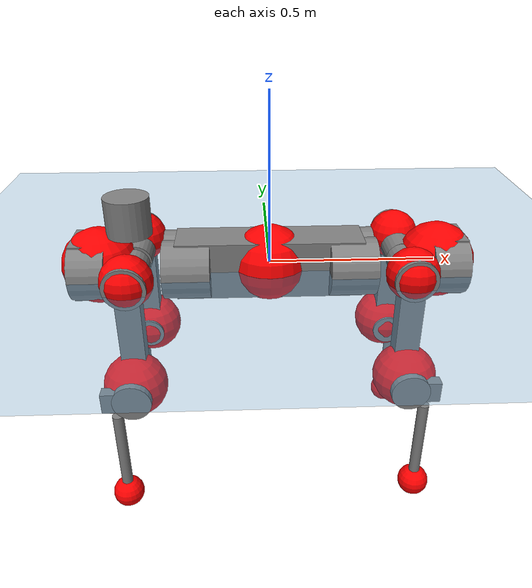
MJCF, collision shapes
<mujoco model="anymal_c">
  <compiler angle="radian" assetdir="assets" balanceinertia="true" inertiafromgeom="false"/>

  <option timestep="0.005" density="1.2" viscosity="2e-05"/>

  <size nkey="1"/>

  <visual>
    <quality shadowsize="8192"/>
    <map shadowclip="0.5"/>
  </visual>

  <default>
    <default class="/">
      <material specular="0" shininess="0.25"/>
      <geom contype="0" conaffinity="0" group="1" solref="-1000 -80"/>
      <site size="0.01 0.005 0.005" group="5"/>
      <general forcelimited="true" forcerange="-80 80" biastype="affine" gainprm="80" biasprm="0 -80 -2"/>
      <default class="anymal_c">
        <joint armature="0.01" damping="0.01" frictionloss="0.1"/>
        <default class="visual">
          <geom type="mesh" group="2"/>
          <default class="visual_zflip"/>
        </default>
        <default class="collision">
          <geom type="cylinder" group="3"/>
          <default class="foot">
            <geom size="0.03 0 0" type="sphere" condim="6" priority="1" friction="0.8 0.02 0.01" solimp="0.015 1 0.03"/>
          </default>
        </default>
      </default>
      <default class="reward_collision_sphere">
        <geom group="5" rgba="1 0 0 1"/>
      </default>
    </default>
  </default>

  <asset>
    <texture type="skybox" colorspace="auto" name="//unnamed_texture_0" builtin="gradient" rgb1="0.95 0.95 0.95" rgb2="0.95 0.95 0.95" width="100" height="600"/>
    <texture type="2d" colorspace="auto" name="texplane" builtin="checker" rgb1="0.345 0.575 0.748" rgb2="0.345 0.575 0.748" markrgb="1 1 1" width="512" height="512"/>
    <texture type="2d" colorspace="linear" name="base" file="base.png"/>
    <texture type="2d" colorspace="linear" name="top_shell" file="top_shell.png"/>
    <texture type="2d" colorspace="linear" name="bottom_shell" file="bottom_shell.png"/>
    <texture type="2d" colorspace="linear" name="remote" file="remote.png"/>
    <texture type="2d" colorspace="linear" name="hatch" file="hatch.png"/>
    <texture type="2d" colorspace="linear" name="handle" file="handle.png"/>
    <texture type="2d" colorspace="linear" name="face" file="face.png"/>
    <texture type="2d" colorspace="linear" name="battery" file="battery.png"/>
    <texture type="2d" colorspace="linear" name="lidar_cage" file="lidar_cage.png"/>
    <texture type="2d" colorspace="linear" name="depth_camera" file="depth_camera.png"/>
    <texture type="2d" colorspace="linear" name="wide_angle_camera" file="wide_angle_camera.png"/>
    <texture type="2d" colorspace="linear" name="lidar" file="lidar.png"/>
    <texture type="2d" colorspace="linear" name="drive" file="drive.png"/>
    <texture type="2d" colorspace="linear" name="hip_l" file="hip_l.png"/>
    <texture type="2d" colorspace="linear" name="shank_l" file="shank_l.png"/>
    <texture type="2d" colorspace="linear" name="foot" file="foot.png"/>
    <texture type="2d" colorspace="linear" name="thigh" file="thigh.png"/>
    <texture type="2d" colorspace="linear" name="shank_r" file="shank_r.png"/>
    <texture type="2d" colorspace="linear" name="hip_r" file="hip_r.png"/>
    <material name="MatPlane" class="/" texture="texplane" texuniform="true" texrepeat="2 2" specular="0.9" shininess="0.5"/>
    <material name="black_plastic" class="/" rgba="0.007 0.007 0.007 1"/>
    <material name="green" class="/" rgba="0.052 0.178 0.033 1"/>
    <material name="red" class="/" rgba="0.178 0.006 0.005 1"/>
    <material name="yellow" class="/" rgba="0.178 0.119 0.006 1"/>
    <material name="lwl" class="/" rgba="0.8 0.8 0.8 1"/>
    <material name="base" class="/" texture="base"/>
    <material name="top_shell" class="/" texture="top_shell"/>
    <material name="bottom_shell" class="/" texture="bottom_shell"/>
    <material name="hip_l" class="/" texture="hip_l"/>
    <material name="thigh" class="/" texture="thigh"/>
    <material name="shank_l" class="/" texture="shank_l"/>
    <material name="foot" class="/" texture="foot"/>
    <material name="hip_r" class="/" texture="hip_r"/>
    <material name="shank" class="/" texture="shank_r"/>
    <material name="hatch" class="/" texture="hatch"/>
    <material name="remote" class="/" texture="remote"/>
    <material name="handle" class="/" texture="handle"/>
    <material name="face" class="/" texture="face"/>
    <material name="depth_camera" class="/" texture="depth_camera"/>
    <material name="wide_angle_camera" class="/" texture="wide_angle_camera"/>
    <material name="battery" class="/" texture="battery"/>
    <material name="lidar_cage" class="/" texture="lidar_cage"/>
    <material name="lidar" class="/" texture="lidar"/>
    <material name="drive" class="/" texture="drive"/>
    <mesh name="base_0" class="/" file="base_0.obj"/>
    <mesh name="base_1" class="/" file="base_1.obj"/>
    <mesh name="base_2" class="/" file="base_2.obj"/>
    <mesh name="base_3" class="/" file="base_3.obj"/>
    <mesh name="base_4" class="/" file="base_4.obj"/>
    <mesh name="base_5" class="/" file="base_5.obj"/>
    <mesh name="top_shell" class="/" file="top_shell.obj"/>
    <mesh name="bottom_shell" class="/" file="bottom_shell.obj"/>
    <mesh name="remote" class="/" file="remote.obj"/>
    <mesh name="handle" class="/" file="handle.obj"/>
    <mesh name="face" class="/" file="face.obj"/>
    <mesh name="wide_angle_camera" class="/" file="wide_angle_camera.obj"/>
    <mesh name="depth_camera" class="/" file="depth_camera.obj"/>
    <mesh name="battery" class="/" file="battery.obj"/>
    <mesh name="lidar_cage" class="/" file="lidar_cage.obj"/>
    <mesh name="lidar" class="/" file="lidar.obj"/>
    <mesh name="drive" class="/" file="drive.obj"/>
    <mesh name="hip_l" class="/" file="hip_l.obj"/>
    <mesh name="thigh" class="/" file="thigh.obj"/>
    <mesh name="shank_l" class="/" file="shank_l.obj"/>
    <mesh name="foot" class="/" file="foot.obj"/>
    <mesh name="hip_r" class="/" file="hip_r.obj"/>
    <mesh name="hatch" class="/" file="hatch.obj"/>
    <mesh name="shank_r" class="/" file="shank_r.obj"/>
  </asset>

  <worldbody>
    <geom name="floor" class="/" size="100 100 0.125" type="plane" group="0" material="MatPlane"/>
    <light name="toplight_shadow" class="/" pos="0 0 5" dir="0.0990148 0.0990148 -0.990148" type="directional" ambient="0.04 0.04 0.04" diffuse="0.55 0.55 0.55" specular="0.12 0.12 0.12"/>
    <light name="toplight_fill" class="/" pos="0 0 5" dir="0.0990148 0.0990148 -0.990148" type="directional" castshadow="false" ambient="0.04 0.04 0.04" diffuse="0.3 0.3 0.3" specular="0.08 0.08 0.08"/>
    <body name="trunk" childclass="anymal_c" pos="0.000509652 -0.000208492 -0.00111913" quat="1 -3.08016e-05 -0.000117804 0.000442117">
      <inertial pos="0.00235755 0.000788128 0.0597244" quat="0.493776 0.497216 0.498677 0.510179" mass="16.9257" diaginertia="1.14929 0.0386132 0.44329"/>
      <joint name="//unnamed_joint_0" type="free" armature="0" damping="0" frictionloss="0"/>
      <geom name="//unnamed_geom_1" class="visual" material="green" mesh="base_0"/>
      <geom name="//unnamed_geom_2" class="visual" material="yellow" mesh="base_1"/>
      <geom name="//unnamed_geom_3" class="visual" material="red" mesh="base_2"/>
      <geom name="//unnamed_geom_4" class="visual" material="black_plastic" mesh="base_3"/>
      <geom name="//unnamed_geom_5" class="visual" material="lwl" mesh="base_4"/>
      <geom name="//unnamed_geom_6" class="visual" material="base" mesh="base_5"/>
      <geom name="trunk_1" class="collision" size="0.276192 0.0666669 0.0857146" type="box"/>
      <geom name="trunk_2" class="collision" size="0.0857146 0.0690479" pos="0.243637 0.0402481 0" quat="0.707107 0 0.707107 0"/>
      <geom name="trunk_3" class="collision" size="0.0857146 0.0690479" pos="-0.243637 0.0402481 0" quat="0.707107 0 0.707107 0"/>
      <geom name="trunk_4" class="collision" size="0.0857146 0.0690479" pos="0.243637 -0.0402481 0" quat="0.707107 0 0.707107 0"/>
      <geom name="trunk_5" class="collision" size="0.0857146 0.0690479" pos="-0.243637 -0.0402481 0" quat="0.707107 0 0.707107 0"/>
      <geom name="//unnamed_geom_12" class="visual" material="top_shell" mesh="top_shell"/>
      <geom name="//unnamed_geom_13" class="visual" material="bottom_shell" mesh="bottom_shell"/>
      <geom name="//unnamed_geom_14" class="visual" material="remote" mesh="remote"/>
      <geom name="//unnamed_geom_15" class="visual" material="handle" mesh="handle"/>
      <geom name="//unnamed_geom_16" class="visual" pos="0.46431 0 0" quat="1 0 0 0" material="face" mesh="face"/>
      <geom name="trunk_6" class="collision" size="0.0523812 0.0666669 0.0857146" pos="0.525919 0 0" type="box"/>
      <geom name="//unnamed_geom_18" class="collision" size="0.0857146 0.0523812" pos="0.525919 0.0402481 0" quat="0.707107 0 0.707107 0"/>
      <geom name="//unnamed_geom_19" class="collision" size="0.0857146 0.0523812" pos="0.525919 -0.0402481 0" quat="0.707107 0 0.707107 0"/>
      <geom name="//unnamed_geom_20" class="visual" pos="0.517128 0 -0.0342488" quat="0.965926 0 0.258819 0" material="depth_camera" mesh="depth_camera"/>
      <geom name="//unnamed_geom_21" class="visual" pos="0.574647 0 0.0173953" material="wide_angle_camera" mesh="wide_angle_camera"/>
      <geom name="//unnamed_geom_22" class="visual_zflip" pos="-0.46431 0 0" quat="0 0 0 1" material="face" mesh="face"/>
      <geom name="trunk_7" class="collision" size="0.0523812 0.0666669 0.0857146" pos="-0.525919 0 0" quat="0 0 0 1" type="box"/>
      <geom name="//unnamed_geom_24" class="collision" size="0.0857146 0.0523812" pos="-0.525919 -0.0402481 0" quat="0 -0.707107 0 0.707107"/>
      <geom name="//unnamed_geom_25" class="collision" size="0.0857146 0.0523812" pos="-0.525919 0.0402481 0" quat="0 -0.707107 0 0.707107"/>
      <geom name="//unnamed_geom_26" class="visual" pos="-0.517128 0 -0.0342488" quat="0 -0.258819 0 0.965926" material="depth_camera" mesh="depth_camera"/>
      <geom name="//unnamed_geom_27" class="visual_zflip" pos="-0.574647 0 0.0173953" quat="0 0 0 1" material="wide_angle_camera" mesh="wide_angle_camera"/>
      <geom name="//unnamed_geom_28" class="visual" material="battery" mesh="battery"/>
      <geom name="//unnamed_geom_29" class="visual" pos="0 0.0368101 0.0334385" quat="0.683013 -0.183013 0.183013 0.683013" material="depth_camera" mesh="depth_camera"/>
      <geom name="//unnamed_geom_30" class="visual" pos="0 -0.0368101 0.0334385" quat="0.683013 0.183013 0.183013 -0.683013" material="depth_camera" mesh="depth_camera"/>
      <geom name="//unnamed_geom_31" class="visual" pos="-0.407741 0 0.085408" quat="1 0 0 0" material="lidar_cage" mesh="lidar_cage"/>
      <geom name="trunk_8" class="collision" size="0.0666669 0.0571431" pos="-0.407741 0 0.155129"/>
      <geom name="//unnamed_geom_33" class="visual" pos="-0.407741 -0.000214193 0.165238" quat="0.707107 0 0 -0.707107" material="lidar" mesh="lidar"/>
      <geom name="//unnamed_geom_34" class="visual" pos="0.335939 0.0600057 -1.01265e-08" quat="0.258819 0.965926 0 0" material="drive" mesh="drive"/>
      <geom name="//unnamed_geom_35" class="visual" pos="0.335939 -0.0600057 1.01265e-08" quat="0.258819 -0.965926 0 0" material="drive" mesh="drive"/>
      <geom name="//unnamed_geom_36" class="visual" pos="-0.335939 0.0600057 1.01265e-08" quat="0 0 0.965926 -0.258819" material="drive" mesh="drive"/>
      <geom name="//unnamed_geom_37" class="visual" pos="-0.335939 -0.0600057 -1.01265e-08" quat="0 0 -0.965926 -0.258819" material="drive" mesh="drive"/>
      <geom name="//unnamed_geom_38" class="visual" pos="0.12994 0 0.084827" quat="1 0 0 0" material="hatch" mesh="hatch"/>
      <geom name="//unnamed_geom_39" class="reward_collision_sphere" size="0.114286"/>
      <geom name="//unnamed_geom_40" class="reward_collision_sphere" size="0.114286" pos="0.504076 0 0"/>
      <geom name="//unnamed_geom_41" class="reward_collision_sphere" size="0.114286" pos="-0.504076 0 0"/>
      <site name="imu" pos="0.291479 -0.00202547 0.0499067" size="0.00952385"/>
      <camera name="track" pos="0 -1.14995 0" quat="0.707107 0.707107 0 0" mode="trackcom"/>
      <camera name="ego_camera" pos="0.504076 0 -0.0464805" quat="-0.5 -0.5 0.5 0.5"/>
      <body name="LF_HIP" pos="0.338135 0.0579852 0.00019224" quat="0.258186 0.966095 -0.000537903 0.000837854">
        <inertial pos="0.0625244 -0.0109109 -0.00954738" quat="-0.134825 0.707871 -0.141034 0.678859" mass="2.45378" diaginertia="0.0105927 0.000314555 0.00725029"/>
        <joint name="LF_HAA" pos="0 0 0" axis="0.99999 -0.00350235 0.00270025" range="-0.721758 0.529508" armature="0.0086415" damping="0.0191923" frictionloss="0.0859347"/>
        <geom name="//unnamed_geom_42" class="visual" pos="0 -0.000595697 9.78427e-05" quat="0.258819 -0.965926 0 0" material="hip_l" mesh="hip_l"/>
        <geom name="//unnamed_geom_43" class="visual" pos="0.0670981 -0.0743339 -0.0472588" quat="0.183013 -0.683013 0.683013 0.183013" material="drive" mesh="drive"/>
        <geom name="//unnamed_geom_44" class="collision" size="0.0476192 0.0666669" pos="0.0670981 -0.00687656 -0.0080237" quat="-0.353553 -0.612372 0.612372 -0.353553"/>
        <body name="LF_THIGH" pos="0.0673061 -0.043694 -0.0490143" quat="0.18296 -0.683061 0.682975 0.183026">
          <inertial pos="0.0373964 -0.000187374 -0.28667" quat="0.993484 -0.0130308 -0.0848371 0.074986" mass="2.70724" diaginertia="0.054119 0.00188169 0.00865218"/>
          <joint name="LF_HFE" pos="0 0 0" axis="0.999935 0.00556567 0.00991586" stiffness="0.0124595" range="-3.19768 3.17915" armature="0.0102633" damping="0" frictionloss="0.09894"/>
          <geom name="//unnamed_geom_45" class="visual" pos="0.0108473 1.70927e-05 0" quat="0.707107 0 0 -0.707107" material="thigh" mesh="thigh"/>
          <geom name="//unnamed_geom_46" class="collision" size="0.061905 0.0380954" pos="0.0448067 0 0" quat="0.5 0.5 -0.5 -0.5"/>
          <geom name="//unnamed_geom_47" class="collision" size="0.0357144 0.0285715 0.134585" pos="0.0336051 0 -0.164209" quat="0.707107 0 0 -0.707107" type="box"/>
          <geom name="//unnamed_geom_48" class="visual" pos="0.112353 0 -0.331174" quat="1 0 0 0" material="drive" mesh="drive"/>
          <geom name="//unnamed_geom_49" class="collision" size="0.0476192 0.0666669" pos="0.0339411 0 -0.331174" quat="0.707107 0 0.707107 0"/>
          <geom name="//unnamed_geom_50" class="reward_collision_sphere" size="0.0761908" pos="0.0280042 0 0"/>
          <body name="LF_SHANK" pos="0.112573 -2.729e-06 -0.328768" quat="1 8.1845e-06 6.94702e-06 -5.6336e-05">
            <inertial pos="0.00390499 -0.0349842 -0.096093" quat="0.993992 -0.106077 0.00646745 -0.0261945" mass="0.497928" diaginertia="0.0173942 0.000582142 0.00224397"/>
            <joint name="LF_KFE" pos="0 0 0" axis="0.99992 0.00201422 0.012484" range="-3.16743 3.19058" armature="0.0106172" damping="0.00863415" frictionloss="0.102819"/>
            <geom name="//unnamed_geom_51" class="visual" pos="0.00353705 0.0188597 0" quat="0.707107 0 0 -0.707107" material="shank_l" mesh="shank_l"/>
            <geom name="LF_kfe_act" class="collision" size="0.0571431 0.0190477" pos="0.0224034 0 0" quat="0.5 0.5 -0.5 -0.5"/>
            <geom name="//unnamed_geom_53" class="collision" size="0.0547612 0.032143 0.0180953" pos="0.0224034 -0.0330604 0" quat="0.5 0.5 -0.5 -0.5" type="box"/>
            <geom name="//unnamed_geom_54" class="visual" pos="0.0146173 -0.0444911 -0.392726" quat="0.382683 0 0 -0.92388" material="foot" mesh="foot"/>
            <geom name="LF_calf" class="collision" size="0.0166667 0.134526" pos="0.0146182 -0.0505689 -0.196363" quat="0.707107 0 0 -0.707107"/>
            <geom name="LF_foot" class="foot" size="0.0245302" pos="0.0146182 -0.0505689 -0.36658" quat="0.707107 0 0 -0.707107"/>
            <geom name="//unnamed_geom_57" class="reward_collision_sphere" size="0.0952385" pos="-0.0560084 0 0"/>
            <geom name="//unnamed_geom_58" class="reward_collision_sphere" size="0.0476192" pos="0.0146182 -0.0505689 -0.36658"/>
            <site name="LF_foot" class="foot" pos="0.0146182 -0.0505689 -0.36658" quat="0.707107 0 0 -0.707107" size="0.00952385"/>
          </body>
        </body>
      </body>
      <body name="RF_HIP" pos="0.334795 -0.0587082 4.92684e-05" quat="0.258233 -0.966083 0.000196427 0.0002932">
        <inertial pos="0.0629293 0.00866539 -0.00947466" quat="0.138034 0.676552 0.130245 0.711519" mass="2.37594" diaginertia="0.0102121 0.000323423 0.00715646"/>
        <joint name="RF_HAA" pos="0 0 0" axis="0.999888 -0.0132304 0.00705842" range="-0.46804 0.753461" armature="0.00988132" damping="0.0148507" frictionloss="0.0994213"/>
        <geom name="//unnamed_geom_59" class="visual" pos="0 0.000595692 9.78424e-05" quat="0.258819 0.965926 0 0" material="hip_r" mesh="hip_r"/>
        <geom name="//unnamed_geom_60" class="visual" pos="0.0670981 0.0743339 -0.0472588" quat="0.183013 0.683013 0.683013 -0.183013" material="drive" mesh="drive"/>
        <geom name="//unnamed_geom_61" class="collision" size="0.0476192 0.0666669" pos="0.0670981 0.00687656 -0.0080237" quat="-0.353553 0.612372 0.612372 0.353553"/>
        <body name="RF_THIGH" pos="0.064856 0.040069 -0.0511742" quat="0.182339 0.68298 0.682924 -0.184137">
          <inertial pos="0.0345336 0.00159823 -0.28604" quat="0.992486 -0.00443967 -0.0827841 0.0899895" mass="2.69098" diaginertia="0.053418 0.00190344 0.00908024"/>
          <joint name="RF_HFE" pos="0 0 0" axis="1 0.00054691 -0.000715437" stiffness="0.00742653" range="-3.19006 3.16802" armature="0.00932982" damping="0.00274209" frictionloss="0.0789138"/>
          <geom name="//unnamed_geom_62" class="visual" pos="0.0108473 1.70927e-05 0" quat="0.707107 0 0 -0.707107" material="thigh" mesh="thigh"/>
          <geom name="//unnamed_geom_63" class="collision" size="0.061905 0.0380954" pos="0.0448067 0 0" quat="0.5 0.5 0.5 0.5"/>
          <geom name="//unnamed_geom_64" class="collision" size="0.0357144 0.0285715 0.134585" pos="0.0336051 0 -0.164209" quat="0.707107 0 0 0.707107" type="box"/>
          <geom name="//unnamed_geom_65" class="visual" pos="0.112353 0 -0.331174" quat="1 0 0 0" material="drive" mesh="drive"/>
          <geom name="//unnamed_geom_66" class="collision" size="0.0476192 0.0666669" pos="0.0339411 0 -0.331174" quat="0.707107 0 0.707107 0"/>
          <geom name="//unnamed_geom_67" class="reward_collision_sphere" size="0.0761908" pos="0.0280042 0 0"/>
          <body name="RF_SHANK" pos="0.111157 0.0016402 -0.3281" quat="1 -3.56284e-06 -6.38366e-06 -1.8074e-06">
            <inertial pos="0.00720993 0.0355006 -0.0950894" quat="0.993197 0.113273 0.008189 0.0257385" mass="0.495697" diaginertia="0.0183427 0.000576305 0.00235274"/>
            <joint name="RF_KFE" pos="0 0 0" axis="0.999922 0.00798276 0.00960948" range="-3.17483 3.16907" armature="0.00825508" damping="0.0133488" frictionloss="0.104927"/>
            <geom name="//unnamed_geom_68" class="visual" pos="0.00353703 -0.0188597 0" quat="0.707107 0 0 0.707107" material="shank" mesh="shank_r"/>
            <geom name="RF_kfe_act" class="collision" size="0.0571431 0.0190477" pos="0.0224034 0 0" quat="0.5 0.5 0.5 0.5"/>
            <geom name="//unnamed_geom_70" class="collision" size="0.0547612 0.032143 0.0180953" pos="0.0224034 0.0330604 0" quat="0.5 0.5 0.5 0.5" type="box"/>
            <geom name="//unnamed_geom_71" class="visual" pos="0.0146191 0.0444911 -0.392726" quat="0.382683 0 0 0.92388" material="foot" mesh="foot"/>
            <geom name="RF_calf" class="collision" size="0.0166667 0.134526" pos="0.0146182 0.0505689 -0.196363" quat="0.707107 0 0 0.707107"/>
            <geom name="RF_foot" class="foot" size="0.0321244" pos="0.0146182 0.0505689 -0.36658" quat="0.707107 0 0 0.707107"/>
            <geom name="//unnamed_geom_74" class="reward_collision_sphere" size="0.0952385" pos="-0.0560084 0 0"/>
            <geom name="//unnamed_geom_75" class="reward_collision_sphere" size="0.0476192" pos="0.0146182 0.0505689 -0.36658"/>
            <site name="RF_foot" class="foot" pos="0.0146182 0.0505689 -0.36658" quat="0.707107 0 0 0.707107" size="0.00952385"/>
          </body>
        </body>
      </body>
      <body name="LH_HIP" pos="-0.333547 0.0626775 0.00114021" quat="-0.00136694 0.000259987 0.965853 -0.259087">
        <inertial pos="0.0660992 0.0075108 -0.00994102" quat="0.130519 0.675784 0.12356 0.714853" mass="2.4329" diaginertia="0.010032 0.000302273 0.00707067"/>
        <joint name="LH_HAA" pos="0 0 0" axis="0.999887 -0.00190275 -0.0149426" range="-0.441068 0.789777" armature="0.0100368" damping="0" frictionloss="0.097609"/>
        <geom name="//unnamed_geom_76" class="visual" pos="0 0.000595692 9.78424e-05" quat="-0.258819 -0.965926 0 0" material="hip_r" mesh="hip_r"/>
        <geom name="//unnamed_geom_77" class="visual" pos="0.0670981 0.0743339 -0.0472588" quat="0.183013 0.683013 0.683013 -0.183013" material="drive" mesh="drive"/>
        <geom name="//unnamed_geom_78" class="collision" size="0.0476192 0.0666669" pos="0.0670981 0.00687656 -0.0080237" quat="-0.353553 0.612372 0.612372 0.353553"/>
        <body name="LH_THIGH" pos="0.0653177 0.0449016 -0.0520737" quat="0.18293 0.682829 0.683191 -0.183116">
          <inertial pos="0.0345401 2.94278e-05 -0.286861" quat="0.992608 -0.00609834 -0.0816549 0.0895858" mass="2.63446" diaginertia="0.0528083 0.00182844 0.0091149"/>
          <joint name="LH_HFE" pos="0 0 0" axis="1 0.000111393 0.000821149" stiffness="0.00373889" range="-3.14902 3.12168" armature="0.00843599" damping="0" frictionloss="0.108078"/>
          <geom name="//unnamed_geom_79" class="visual" pos="0.0108473 1.70927e-05 0" quat="0.707107 0 0 -0.707107" material="thigh" mesh="thigh"/>
          <geom name="//unnamed_geom_80" class="collision" size="0.061905 0.0380954" pos="0.0448067 0 0" quat="0.5 0.5 -0.5 -0.5"/>
          <geom name="//unnamed_geom_81" class="collision" size="0.0357144 0.0285715 0.134585" pos="0.0336051 0 -0.164209" quat="0.707107 0 0 -0.707107" type="box"/>
          <geom name="//unnamed_geom_82" class="visual" pos="0.112353 0 -0.331174" quat="1 0 0 0" material="drive" mesh="drive"/>
          <geom name="//unnamed_geom_83" class="collision" size="0.0476192 0.0666669" pos="0.0339411 0 -0.331174" quat="0.707107 0 0.707107 0"/>
          <geom name="//unnamed_geom_84" class="reward_collision_sphere" size="0.0761908" pos="0.0280042 0 0"/>
          <body name="LH_SHANK" pos="0.110974 -0.00126317 -0.333917" quat="0.999999 -0.000153407 -0.00138462 -0.000286982">
            <inertial pos="0.00628541 0.0349872 -0.093164" quat="0.993785 0.106873 -0.0146891 0.0274495" mass="0.505705" diaginertia="0.0177895 0.000583921 0.00243039"/>
            <joint name="LH_KFE" pos="0 0 0" axis="0.999988 0.00437777 0.0023523" range="-3.12064 3.13468" armature="0.00932673" damping="0.0142495" frictionloss="0.10208"/>
            <geom name="//unnamed_geom_85" class="visual" pos="0.00353703 -0.0188597 0" quat="-0.707107 0 0 -0.707107" material="shank" mesh="shank_r"/>
            <geom name="LH_kfe_act" class="collision" size="0.0571431 0.0190477" pos="0.0224034 0 0" quat="0.5 0.5 -0.5 -0.5"/>
            <geom name="//unnamed_geom_87" class="collision" size="0.0547612 0.032143 0.0180953" pos="0.0224034 0.0330604 0" quat="0.5 0.5 -0.5 -0.5" type="box"/>
            <geom name="//unnamed_geom_88" class="visual" pos="0.0146191 0.0444911 -0.392726" quat="-0.382683 0 0 -0.92388" material="foot" mesh="foot"/>
            <geom name="LH_calf" class="collision" size="0.0166667 0.134526" pos="0.0146182 0.0505689 -0.196363" quat="0.707107 0 0 -0.707107"/>
            <geom name="LH_foot" class="foot" size="0.0240976" pos="0.0146182 0.0505689 -0.36658" quat="0.707107 0 0 -0.707107"/>
            <geom name="//unnamed_geom_91" class="reward_collision_sphere" size="0.0952385" pos="-0.0560084 0 0"/>
            <geom name="//unnamed_geom_92" class="reward_collision_sphere" size="0.0476192" pos="0.0146182 0.0505689 -0.36658"/>
            <site name="LH_foot" class="foot" pos="0.0146182 0.0505689 -0.36658" quat="0.707107 0 0 -0.707107" size="0.00952385"/>
          </body>
        </body>
      </body>
      <body name="RH_HIP" pos="-0.33652 -0.0589082 -0.00237894" quat="0.000131851 -5.24278e-05 -0.965915 -0.258858">
        <inertial pos="0.0648625 -0.0080266 -0.0102363" quat="-0.131631 0.701108 -0.133843 0.6879" mass="2.33072" diaginertia="0.0099426 0.00029983 0.00694522"/>
        <joint name="RH_HAA" pos="0 0 0" axis="1 -0.000109445 0.00069155" range="-0.716732 0.444414" armature="0.00981979" damping="0.00411503" frictionloss="0.0935686"/>
        <geom name="//unnamed_geom_93" class="visual" pos="0 -0.000595697 9.78427e-05" quat="-0.258819 0.965926 0 0" material="hip_l" mesh="hip_l"/>
        <geom name="//unnamed_geom_94" class="visual" pos="0.0670981 -0.0743339 -0.0472588" quat="-0.183013 0.683013 -0.683013 -0.183013" material="drive" mesh="drive"/>
        <geom name="//unnamed_geom_95" class="collision" size="0.0476192 0.0666669" pos="0.0670981 -0.00687656 -0.0080237" quat="0.353553 0.612372 -0.612372 0.353553"/>
        <body name="RH_THIGH" pos="0.0673788 -0.044504 -0.0503927" quat="-0.182753 0.682948 -0.683038 -0.183417">
          <inertial pos="0.0357145 -0.00254542 -0.28366" quat="0.993184 -0.00520054 -0.0806101 0.0840305" mass="2.82854" diaginertia="0.0556581 0.00193487 0.0094601"/>
          <joint name="RH_HFE" pos="0 0 0" axis="0.999998 0.00172887 0.000476631" range="-3.14099 3.13398" armature="0.008263" damping="0" frictionloss="0.0927803"/>
          <geom name="//unnamed_geom_96" class="visual" pos="0.0108473 1.70927e-05 0" quat="0.707107 0 0 -0.707107" material="thigh" mesh="thigh"/>
          <geom name="//unnamed_geom_97" class="collision" size="0.061905 0.0380954" pos="0.0448067 0 0" quat="0.5 0.5 0.5 0.5"/>
          <geom name="//unnamed_geom_98" class="collision" size="0.0357144 0.0285715 0.134585" pos="0.0336051 0 -0.164209" quat="0.707107 0 0 0.707107" type="box"/>
          <geom name="//unnamed_geom_99" class="visual" pos="0.112353 0 -0.331174" quat="1 0 0 0" material="drive" mesh="drive"/>
          <geom name="//unnamed_geom_100" class="collision" size="0.0476192 0.0666669" pos="0.0339411 0 -0.331174" quat="0.707107 0 0.707107 0"/>
          <geom name="//unnamed_geom_101" class="reward_collision_sphere" size="0.0761908" pos="0.0280042 0 0"/>
          <body name="RH_SHANK" pos="0.11364 -0.00218691 -0.328922" quat="0.999999 0.00113617 0.000205976 -8.74433e-05">
            <inertial pos="0.00365822 -0.0353926 -0.0938198" quat="0.992827 -0.11694 -0.00152373 -0.0248289" mass="0.516578" diaginertia="0.0175324 0.000581948 0.00236355"/>
            <joint name="RH_KFE" pos="0 0 0" axis="0.999971 -0.0059932 0.00463917" range="-3.15276 3.08242" armature="0.0104967" damping="0.0198126" frictionloss="0.0941724"/>
            <geom name="//unnamed_geom_102" class="visual" pos="0.00353705 0.0188597 0" quat="0.707107 0 0 -0.707107" material="shank_l" mesh="shank_l"/>
            <geom name="RH_kfe_act" class="collision" size="0.0571431 0.0190477" pos="0.0224034 0 0" quat="0.5 0.5 0.5 0.5"/>
            <geom name="//unnamed_geom_104" class="collision" size="0.0547612 0.032143 0.0180953" pos="0.0224034 -0.0330604 0" quat="0.5 0.5 0.5 0.5" type="box"/>
            <geom name="//unnamed_geom_105" class="visual" pos="0.0146173 -0.0444911 -0.392726" quat="0.382683 0 0 -0.92388" material="foot" mesh="foot"/>
            <geom name="RH_calf" class="collision" size="0.0166667 0.134526" pos="0.0146182 -0.0505689 -0.196363" quat="0.707107 0 0 0.707107"/>
            <geom name="RH_foot" class="foot" size="0.0267438" pos="0.0146182 -0.0505689 -0.36658" quat="0.707107 0 0 0.707107"/>
            <geom name="//unnamed_geom_108" class="reward_collision_sphere" size="0.0952385" pos="-0.0560084 0 0"/>
            <geom name="//unnamed_geom_109" class="reward_collision_sphere" size="0.0476192" pos="0.0146182 -0.0505689 -0.36658"/>
            <site name="RH_foot" class="foot" pos="0.0146182 -0.0505689 -0.36658" quat="0.707107 0 0 0.707107" size="0.00952385"/>
          </body>
        </body>
      </body>
    </body>
  </worldbody>

  <contact>
    <pair class="/" geom1="floor" geom2="LF_foot" name="//unnamed_contact_0"/>
    <pair class="/" geom1="floor" geom2="RF_foot" name="//unnamed_contact_1"/>
    <pair class="/" geom1="floor" geom2="LH_foot" name="//unnamed_contact_2"/>
    <pair class="/" geom1="floor" geom2="RH_foot" name="//unnamed_contact_3"/>
  </contact>

  <actuator>
    <general name="LF_HAA" class="/" joint="LF_HAA" forcerange="-73.0066 73.0066" gainprm="63.1195" biasprm="0 -63.1195 -1.80066"/>
    <general name="LF_HFE" class="/" joint="LF_HFE" forcerange="-70.4306 70.4306" gainprm="63.1195" biasprm="0 -63.1195 -1.80066"/>
    <general name="LF_KFE" class="/" joint="LF_KFE" forcerange="-71.7215 71.7215" gainprm="63.1195" biasprm="0 -63.1195 -1.80066"/>
    <general name="RF_HAA" class="/" joint="RF_HAA" forcerange="-72.0101 72.0101" gainprm="63.1195" biasprm="0 -63.1195 -1.80066"/>
    <general name="RF_HFE" class="/" joint="RF_HFE" forcerange="-84.9647 84.9647" gainprm="63.1195" biasprm="0 -63.1195 -1.80066"/>
    <general name="RF_KFE" class="/" joint="RF_KFE" forcerange="-77.9452 77.9452" gainprm="63.1195" biasprm="0 -63.1195 -1.80066"/>
    <general name="LH_HAA" class="/" joint="LH_HAA" forcerange="-77.3021 77.3021" gainprm="63.1195" biasprm="0 -63.1195 -1.80066"/>
    <general name="LH_HFE" class="/" joint="LH_HFE" forcerange="-78.3978 78.3978" gainprm="63.1195" biasprm="0 -63.1195 -1.80066"/>
    <general name="LH_KFE" class="/" joint="LH_KFE" forcerange="-73.4717 73.4717" gainprm="63.1195" biasprm="0 -63.1195 -1.80066"/>
    <general name="RH_HAA" class="/" joint="RH_HAA" forcerange="-69.3403 69.3403" gainprm="63.1195" biasprm="0 -63.1195 -1.80066"/>
    <general name="RH_HFE" class="/" joint="RH_HFE" forcerange="-82.1141 82.1141" gainprm="63.1195" biasprm="0 -63.1195 -1.80066"/>
    <general name="RH_KFE" class="/" joint="RH_KFE" forcerange="-76.0726 76.0726" gainprm="63.1195" biasprm="0 -63.1195 -1.80066"/>
  </actuator>

  <sensor>
    <gyro site="imu" name="imu_angular_velocity"/>
    <velocimeter site="imu" name="imu_linear_velocity"/>
    <framelinvel objtype="site" objname="LF_foot" name="LF_foot_global_linear_velocity"/>
    <framelinvel objtype="site" objname="RF_foot" name="RF_foot_global_linear_velocity"/>
    <framelinvel objtype="site" objname="LH_foot" name="LH_foot_global_linear_velocity"/>
    <framelinvel objtype="site" objname="RH_foot" name="RH_foot_global_linear_velocity"/>
  </sensor>

  <keyframe>
    <key name="home" qpos="0 0 0.55 1 0 0 0 0 0.4 -0.8 0 -0.4 0.8 0 -0.4 0.8 0 0.4 -0.8"/>
  </keyframe>
</mujoco>
